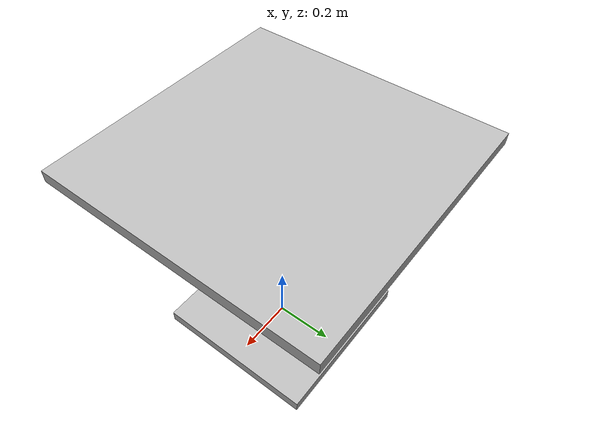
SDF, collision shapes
<?xml version="1.0" ?>
<sdf version="1.5">
  <model name="my_table">
    <static>true</static>
    <link name="link">
      <collision name="surface">
        <pose>0 0 0.755 0 0 0</pose>
        <geometry>
          <box>
            <size>0.913 0.913 0.04</size>
          </box>
        </geometry>
      </collision>

      <collision name="column">
        <pose>0 0 0.335 0 0 0</pose>
        <geometry>
          <box>
            <size>0.042 0.042 0.74</size>
          </box>
        </geometry>
      </collision>

      <collision name="base">
        <pose>0 0 0.02 0 0 0</pose>
        <geometry>
          <box>
            <size>0.56 0.56 0.04</size>
          </box>
        </geometry>
      </collision>

      <visual name="visual">
        <geometry>
          <mesh>
            <uri>model://my_table/meshes/cafe_table.dae</uri>
          </mesh>
        </geometry>
      </visual>
    </link>
  </model>
</sdf>
